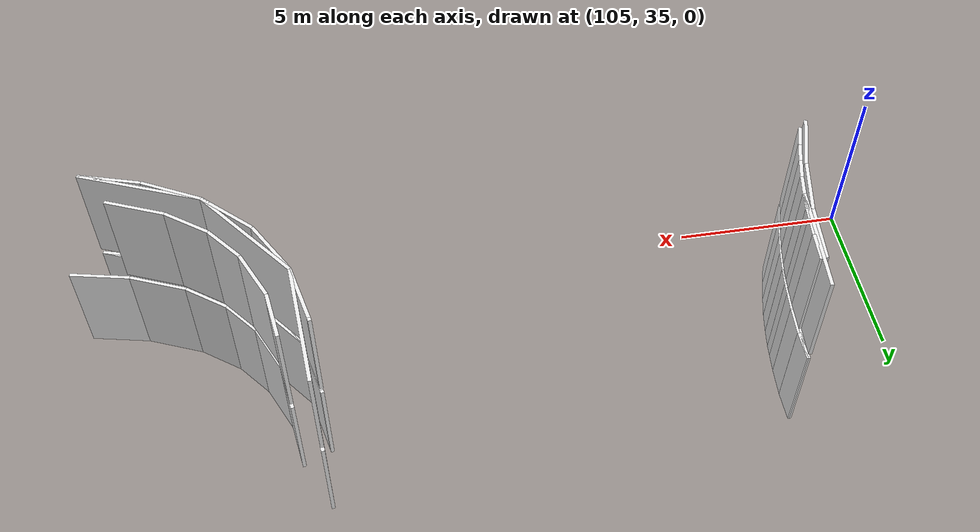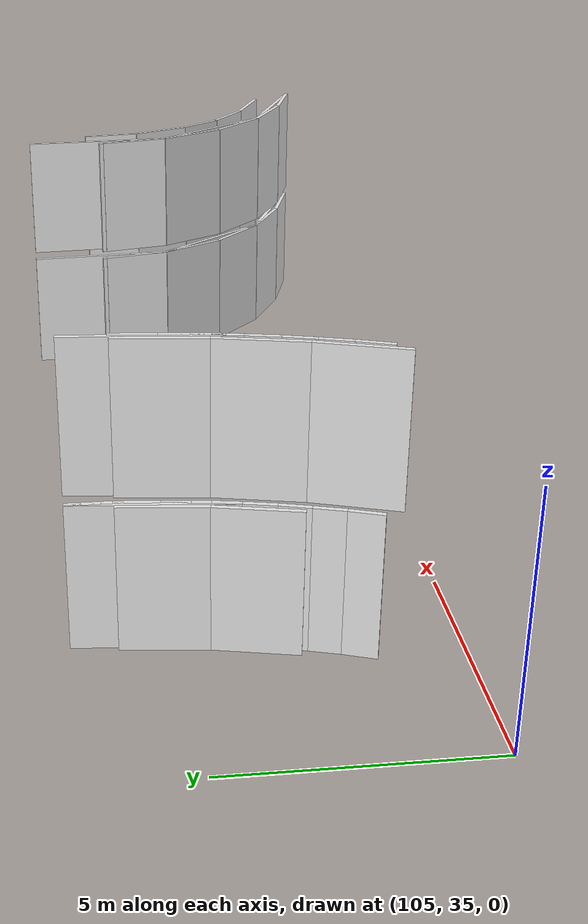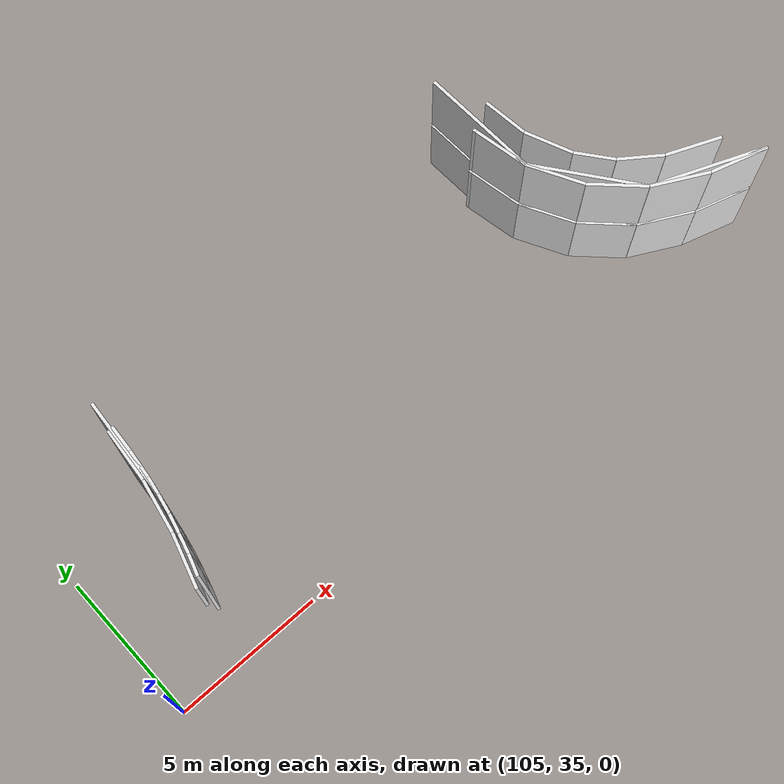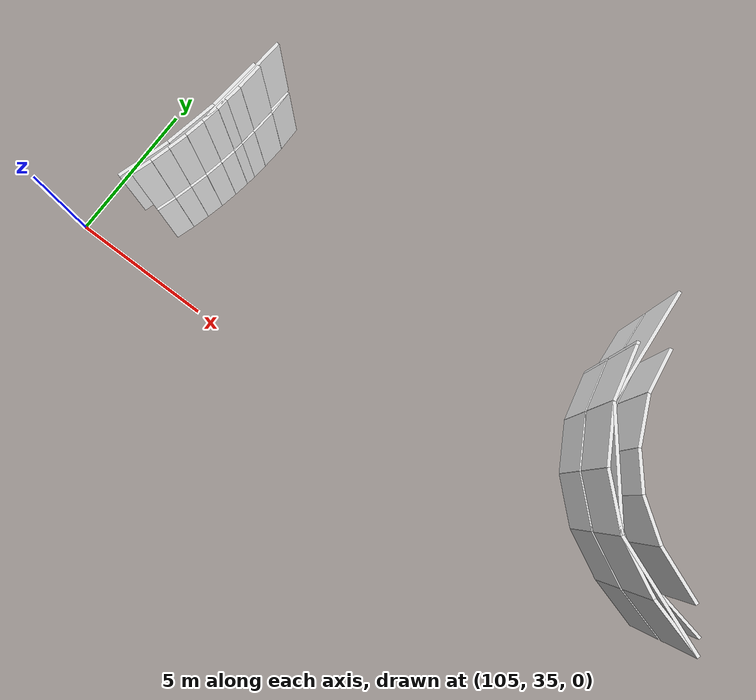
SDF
<sdf version="1.6">
 <world name="default">
  <model name="wall_122.7_40.9_0.0">
   <static>true</static>
   <pose>122.72000000000116 40.94499999983236 1.5 0 0 -1.4258349304067353</pose>
   <link name="link">
    <visual name="visual">
     <geometry><box><size>1.384521578131188 0.1 3</size></box></geometry>
     <material>
      <script><uri>file://media/materials/scripts/gazebo.material</uri><name>Gazebo/White</name></script>
     </material>
    </visual>
   </link>
  </model>
  <model name="wall_123.1_39.6_0.0">
   <static>true</static>
   <pose>123.13000000000466 39.574999999953434 1.5 0 0 -1.1458199052710913</pose>
   <link name="link">
    <visual name="visual">
     <geometry><box><size>1.5037619489216145 0.1 3</size></box></geometry>
     <material>
      <script><uri>file://media/materials/scripts/gazebo.material</uri><name>Gazebo/White</name></script>
     </material>
    </visual>
   </link>
  </model>
  <model name="wall_123.8_38.4_0.0">
   <static>true</static>
   <pose>123.8299999999872 38.41000000014901 1.5 0 0 -0.8884797719201485</pose>
   <link name="link">
    <visual name="visual">
     <geometry><box><size>1.2369316876372989 0.1 3</size></box></geometry>
     <material>
      <script><uri>file://media/materials/scripts/gazebo.material</uri><name>Gazebo/White</name></script>
     </material>
    </visual>
   </link>
  </model>
  <model name="wall_124.8_37.5_0.0">
   <static>true</static>
   <pose>124.77999999999884 37.52000000001863 1.5 0 0 -0.6319742419690464</pose>
   <link name="link">
    <visual name="visual">
     <geometry><box><size>1.388092216176113 0.1 3</size></box></geometry>
     <material>
      <script><uri>file://media/materials/scripts/gazebo.material</uri><name>Gazebo/White</name></script>
     </material>
    </visual>
   </link>
  </model>
  <model name="wall_126.1_36.8_0.0">
   <static>true</static>
   <pose>126.13000000000466 36.77499999990687 1.5 0 0 -0.40106625021121617</pose>
   <link name="link">
    <visual name="visual">
     <geometry><box><size>1.716187635361509 0.1 3</size></box></geometry>
     <material>
      <script><uri>file://media/materials/scripts/gazebo.material</uri><name>Gazebo/White</name></script>
     </material>
    </visual>
   </link>
  </model>
  <model name="wall_127.8_36.3_0.0">
   <static>true</static>
   <pose>127.76999999998952 36.25499999988824 1.5 0 0 -0.21430488386451166</pose>
   <link name="link">
    <visual name="visual">
     <geometry><box><size>1.739798838981761 0.1 3</size></box></geometry>
     <material>
      <script><uri>file://media/materials/scripts/gazebo.material</uri><name>Gazebo/White</name></script>
     </material>
    </visual>
   </link>
  </model>
  <model name="wall_108.4_40.5_0.0">
   <static>true</static>
   <pose>108.39999999999418 40.48999999999069 1.5 0 0 -1.6657480331131271</pose>
   <link name="link">
    <visual name="visual">
     <geometry><box><size>1.6876018489427735 0.1 3</size></box></geometry>
     <material>
      <script><uri>file://media/materials/scripts/gazebo.material</uri><name>Gazebo/White</name></script>
     </material>
    </visual>
   </link>
  </model>
  <model name="wall_108.2_38.8_0.0">
   <static>true</static>
   <pose>108.15499999999884 38.829999999841675 1.5 0 0 -1.7693642190444387</pose>
   <link name="link">
    <visual name="visual">
     <geometry><box><size>1.672871782426382 0.1 3</size></box></geometry>
     <material>
      <script><uri>file://media/materials/scripts/gazebo.material</uri><name>Gazebo/White</name></script>
     </material>
    </visual>
   </link>
  </model>
  <model name="wall_107.8_37.0_0.0">
   <static>true</static>
   <pose>107.84500000000116 36.96999999997206 1.5 0 0 1.2537405736165406</pose>
   <link name="link">
    <visual name="visual">
     <geometry><box><size>0.6735725648923759 0.1 3</size></box></geometry>
     <material>
      <script><uri>file://media/materials/scripts/gazebo.material</uri><name>Gazebo/White</name></script>
     </material>
    </visual>
   </link>
  </model>
  <model name="wall_108.0_37.6_0.0">
   <static>true</static>
   <pose>108.02999999999884 37.58499999996275 1.5 0 0 1.3059789968657436</pose>
   <link name="link">
    <visual name="visual">
     <geometry><box><size>0.6113100684725965 0.1 3</size></box></geometry>
     <material>
      <script><uri>file://media/materials/scripts/gazebo.material</uri><name>Gazebo/White</name></script>
     </material>
    </visual>
   </link>
  </model>
  <model name="wall_108.2_38.2_0.0">
   <static>true</static>
   <pose>108.18499999999767 38.175000000046566 1.5 0 0 1.3218336210932762</pose>
   <link name="link">
    <visual name="visual">
     <geometry><box><size>0.6087692505216008 0.1 3</size></box></geometry>
     <material>
      <script><uri>file://media/materials/scripts/gazebo.material</uri><name>Gazebo/White</name></script>
     </material>
    </visual>
   </link>
  </model>
  <model name="wall_108.3_38.8_0.0">
   <static>true</static>
   <pose>108.32000000000698 38.7750000001397 1.5 0 0 1.3765553305803602</pose>
   <link name="link">
    <visual name="visual">
     <geometry><box><size>0.6216912415659501 0.1 3</size></box></geometry>
     <material>
      <script><uri>file://media/materials/scripts/gazebo.material</uri><name>Gazebo/White</name></script>
     </material>
    </visual>
   </link>
  </model>
  <model name="wall_108.4_39.4_0.0">
   <static>true</static>
   <pose>108.42499999998836 39.35000000009313 1.5 0 0 1.4056476494501888</pose>
   <link name="link">
    <visual name="visual">
     <geometry><box><size>0.547448627758227 0.1 3</size></box></geometry>
     <material>
      <script><uri>file://media/materials/scripts/gazebo.material</uri><name>Gazebo/White</name></script>
     </material>
    </visual>
   </link>
  </model>
  <model name="wall_108.5_39.8_0.0">
   <static>true</static>
   <pose>108.48999999999069 39.795000000158325 1.5 0 0 1.4570043195761424</pose>
   <link name="link">
    <visual name="visual">
     <geometry><box><size>0.35227829917293063 0.1 3</size></box></geometry>
     <material>
      <script><uri>file://media/materials/scripts/gazebo.material</uri><name>Gazebo/White</name></script>
     </material>
    </visual>
   </link>
  </model>
  <model name="wall_108.5_40.2_0.0">
   <static>true</static>
   <pose>108.54000000000815 40.23999999999069 1.5 0 0 1.4601391055381852</pose>
   <link name="link">
    <visual name="visual">
     <geometry><box><size>0.5433231078621997 0.1 3</size></box></geometry>
     <material>
      <script><uri>file://media/materials/scripts/gazebo.material</uri><name>Gazebo/White</name></script>
     </material>
    </visual>
   </link>
  </model>
  <model name="wall_108.6_40.9_0.0">
   <static>true</static>
   <pose>108.60000000000582 40.92999999993481 1.5 0 0 1.4994888620391533</pose>
   <link name="link">
    <visual name="visual">
     <geometry><box><size>0.8421401311727711 0.1 3</size></box></geometry>
     <material>
      <script><uri>file://media/materials/scripts/gazebo.material</uri><name>Gazebo/White</name></script>
     </material>
    </visual>
   </link>
  </model>
  <model name="wall_108.6_41.8_0.0">
   <static>true</static>
   <pose>108.63000000000466 41.78500000014901 1.5 0 0 1.5707963267948966</pose>
   <link name="link">
    <visual name="visual">
     <geometry><box><size>0.8700000001117587 0.1 3</size></box></geometry>
     <material>
      <script><uri>file://media/materials/scripts/gazebo.material</uri><name>Gazebo/White</name></script>
     </material>
    </visual>
   </link>
  </model>
  <model name="wall_121.8_41.2_0.0">
   <static>true</static>
   <pose>121.80999999999767 41.21999999997206 1.5 0 0 -1.373400766945016</pose>
   <link name="link">
    <visual name="visual">
     <geometry><box><size>0.10198039036683233 0.1 3</size></box></geometry>
     <material>
      <script><uri>file://media/materials/scripts/gazebo.material</uri><name>Gazebo/White</name></script>
     </material>
    </visual>
   </link>
  </model>
  <model name="wall_122.0_40.3_0.0">
   <static>true</static>
   <pose>122.00500000000466 40.34499999997206 1.5 0 0 -1.350203072831387</pose>
   <link name="link">
    <visual name="visual">
     <geometry><box><size>1.6909760494132429 0.1 3</size></box></geometry>
     <material>
      <script><uri>file://media/materials/scripts/gazebo.material</uri><name>Gazebo/White</name></script>
     </material>
    </visual>
   </link>
  </model>
  <model name="wall_122.6_38.7_0.0">
   <static>true</static>
   <pose>122.63000000000466 38.73999999999069 1.5 0 0 -1.057190322085212</pose>
   <link name="link">
    <visual name="visual">
     <geometry><box><size>1.7910890542300064 0.1 3</size></box></geometry>
     <material>
      <script><uri>file://media/materials/scripts/gazebo.material</uri><name>Gazebo/White</name></script>
     </material>
    </visual>
   </link>
  </model>
  <model name="wall_123.7_37.3_0.0">
   <static>true</static>
   <pose>123.72000000000116 37.34000000008382 1.5 0 0 -0.7617805082994406</pose>
   <link name="link">
    <visual name="visual">
     <geometry><box><size>1.7965522534480356 0.1 3</size></box></geometry>
     <material>
      <script><uri>file://media/materials/scripts/gazebo.material</uri><name>Gazebo/White</name></script>
     </material>
    </visual>
   </link>
  </model>
  <model name="wall_125.2_36.3_0.0">
   <static>true</static>
   <pose>125.16500000000815 36.300000000046566 1.5 0 0 -0.48603192948913904</pose>
   <link name="link">
    <visual name="visual">
     <geometry><box><size>1.798249148648044 0.1 3</size></box></geometry>
     <material>
      <script><uri>file://media/materials/scripts/gazebo.material</uri><name>Gazebo/White</name></script>
     </material>
    </visual>
   </link>
  </model>
  <model name="wall_126.8_35.6_0.0">
   <static>true</static>
   <pose>126.82000000000698 35.61999999987893 1.5 0 0 -0.2935889874231719</pose>
   <link name="link">
    <visual name="visual">
     <geometry><box><size>1.7968861955959423 0.1 3</size></box></geometry>
     <material>
      <script><uri>file://media/materials/scripts/gazebo.material</uri><name>Gazebo/White</name></script>
     </material>
    </visual>
   </link>
  </model>
  <model name="wall_126.0_36.0_0.0">
   <static>true</static>
   <pose>126.02499999999418 36.04000000003725 1.5 0 0 2.7517456035789243</pose>
   <link name="link">
    <visual name="visual">
     <geometry><box><size>3.578505274677758 0.1 3</size></box></geometry>
     <material>
      <script><uri>file://media/materials/scripts/gazebo.material</uri><name>Gazebo/White</name></script>
     </material>
    </visual>
   </link>
  </model>
  <model name="wall_123.3_38.1_0.0">
   <static>true</static>
   <pose>123.27999999999884 38.12000000011176 1.5 0 0 2.232333811009223</pose>
   <link name="link">
    <visual name="visual">
     <geometry><box><size>3.548577179508213 0.1 3</size></box></geometry>
     <material>
      <script><uri>file://media/materials/scripts/gazebo.material</uri><name>Gazebo/White</name></script>
     </material>
    </visual>
   </link>
  </model>
  <model name="wall_122.1_41.3_0.0">
   <static>true</static>
   <pose>122.05999999999767 41.30499999993481 1.5 0 0 1.6434971027864747</pose>
   <link name="link">
    <visual name="visual">
     <geometry><box><size>3.5794552656525696 0.1 3</size></box></geometry>
     <material>
      <script><uri>file://media/materials/scripts/gazebo.material</uri><name>Gazebo/White</name></script>
     </material>
    </visual>
   </link>
  </model>
  <model name="wall_108.5_40.7_0.0">
   <static>true</static>
   <pose>108.50500000000466 40.6500000001397 1.5 0 0 -1.6502465656866598</pose>
   <link name="link">
    <visual name="visual">
     <geometry><box><size>3.149936507426589 0.1 3</size></box></geometry>
     <material>
      <script><uri>file://media/materials/scripts/gazebo.material</uri><name>Gazebo/White</name></script>
     </material>
    </visual>
   </link>
  </model>
  <model name="wall_122.7_40.9_3.2">
   <static>true</static>
   <pose>122.72000000000116 40.94499999983236 4.7 0 0 -1.4258349304067353</pose>
   <link name="link">
    <visual name="visual">
     <geometry><box><size>1.384521578131188 0.1 3</size></box></geometry>
     <material>
      <script><uri>file://media/materials/scripts/gazebo.material</uri><name>Gazebo/White</name></script>
     </material>
    </visual>
   </link>
  </model>
  <model name="wall_123.1_39.6_3.2">
   <static>true</static>
   <pose>123.13000000000466 39.574999999953434 4.7 0 0 -1.1458199052710913</pose>
   <link name="link">
    <visual name="visual">
     <geometry><box><size>1.5037619489216145 0.1 3</size></box></geometry>
     <material>
      <script><uri>file://media/materials/scripts/gazebo.material</uri><name>Gazebo/White</name></script>
     </material>
    </visual>
   </link>
  </model>
  <model name="wall_123.8_38.4_3.2">
   <static>true</static>
   <pose>123.8299999999872 38.41000000014901 4.7 0 0 -0.8884797719201485</pose>
   <link name="link">
    <visual name="visual">
     <geometry><box><size>1.2369316876372989 0.1 3</size></box></geometry>
     <material>
      <script><uri>file://media/materials/scripts/gazebo.material</uri><name>Gazebo/White</name></script>
     </material>
    </visual>
   </link>
  </model>
  <model name="wall_124.8_37.5_3.2">
   <static>true</static>
   <pose>124.77999999999884 37.52000000001863 4.7 0 0 -0.6319742419690464</pose>
   <link name="link">
    <visual name="visual">
     <geometry><box><size>1.388092216176113 0.1 3</size></box></geometry>
     <material>
      <script><uri>file://media/materials/scripts/gazebo.material</uri><name>Gazebo/White</name></script>
     </material>
    </visual>
   </link>
  </model>
  <model name="wall_126.1_36.8_3.2">
   <static>true</static>
   <pose>126.13000000000466 36.77499999990687 4.7 0 0 -0.40106625021121617</pose>
   <link name="link">
    <visual name="visual">
     <geometry><box><size>1.716187635361509 0.1 3</size></box></geometry>
     <material>
      <script><uri>file://media/materials/scripts/gazebo.material</uri><name>Gazebo/White</name></script>
     </material>
    </visual>
   </link>
  </model>
  <model name="wall_108.4_40.5_3.2">
   <static>true</static>
   <pose>108.39999999999418 40.48999999999069 4.7 0 0 -1.6657480331131271</pose>
   <link name="link">
    <visual name="visual">
     <geometry><box><size>1.6876018489427735 0.1 3</size></box></geometry>
     <material>
      <script><uri>file://media/materials/scripts/gazebo.material</uri><name>Gazebo/White</name></script>
     </material>
    </visual>
   </link>
  </model>
  <model name="wall_108.2_38.8_3.2">
   <static>true</static>
   <pose>108.15499999999884 38.829999999841675 4.7 0 0 -1.7693642190444387</pose>
   <link name="link">
    <visual name="visual">
     <geometry><box><size>1.672871782426382 0.1 3</size></box></geometry>
     <material>
      <script><uri>file://media/materials/scripts/gazebo.material</uri><name>Gazebo/White</name></script>
     </material>
    </visual>
   </link>
  </model>
  <model name="wall_107.7_37.2_3.2">
   <static>true</static>
   <pose>107.74499999999534 37.204999999841675 4.7 0 0 -1.8662371639558804</pose>
   <link name="link">
    <visual name="visual">
     <geometry><box><size>1.6829141390965354 0.1 3</size></box></geometry>
     <material>
      <script><uri>file://media/materials/scripts/gazebo.material</uri><name>Gazebo/White</name></script>
     </material>
    </visual>
   </link>
  </model>
  <model name="wall_107.8_37.0_3.2">
   <static>true</static>
   <pose>107.84500000000116 36.96999999997206 4.7 0 0 1.2537405736165406</pose>
   <link name="link">
    <visual name="visual">
     <geometry><box><size>0.6735725648923759 0.1 3</size></box></geometry>
     <material>
      <script><uri>file://media/materials/scripts/gazebo.material</uri><name>Gazebo/White</name></script>
     </material>
    </visual>
   </link>
  </model>
  <model name="wall_108.0_37.6_3.2">
   <static>true</static>
   <pose>108.02999999999884 37.58499999996275 4.7 0 0 1.3059789968657436</pose>
   <link name="link">
    <visual name="visual">
     <geometry><box><size>0.6113100684725965 0.1 3</size></box></geometry>
     <material>
      <script><uri>file://media/materials/scripts/gazebo.material</uri><name>Gazebo/White</name></script>
     </material>
    </visual>
   </link>
  </model>
  <model name="wall_108.2_38.2_3.2">
   <static>true</static>
   <pose>108.18499999999767 38.175000000046566 4.7 0 0 1.3218336210932762</pose>
   <link name="link">
    <visual name="visual">
     <geometry><box><size>0.6087692505216008 0.1 3</size></box></geometry>
     <material>
      <script><uri>file://media/materials/scripts/gazebo.material</uri><name>Gazebo/White</name></script>
     </material>
    </visual>
   </link>
  </model>
  <model name="wall_108.3_38.8_3.2">
   <static>true</static>
   <pose>108.32000000000698 38.7750000001397 4.7 0 0 1.3765553305803602</pose>
   <link name="link">
    <visual name="visual">
     <geometry><box><size>0.6216912415659501 0.1 3</size></box></geometry>
     <material>
      <script><uri>file://media/materials/scripts/gazebo.material</uri><name>Gazebo/White</name></script>
     </material>
    </visual>
   </link>
  </model>
  <model name="wall_108.4_39.4_3.2">
   <static>true</static>
   <pose>108.42499999998836 39.35000000009313 4.7 0 0 1.4056476494501888</pose>
   <link name="link">
    <visual name="visual">
     <geometry><box><size>0.547448627758227 0.1 3</size></box></geometry>
     <material>
      <script><uri>file://media/materials/scripts/gazebo.material</uri><name>Gazebo/White</name></script>
     </material>
    </visual>
   </link>
  </model>
  <model name="wall_108.5_39.8_3.2">
   <static>true</static>
   <pose>108.48999999999069 39.795000000158325 4.7 0 0 1.4570043195761424</pose>
   <link name="link">
    <visual name="visual">
     <geometry><box><size>0.35227829917293063 0.1 3</size></box></geometry>
     <material>
      <script><uri>file://media/materials/scripts/gazebo.material</uri><name>Gazebo/White</name></script>
     </material>
    </visual>
   </link>
  </model>
  <model name="wall_108.5_40.2_3.2">
   <static>true</static>
   <pose>108.54000000000815 40.23999999999069 4.7 0 0 1.4601391055381852</pose>
   <link name="link">
    <visual name="visual">
     <geometry><box><size>0.5433231078621997 0.1 3</size></box></geometry>
     <material>
      <script><uri>file://media/materials/scripts/gazebo.material</uri><name>Gazebo/White</name></script>
     </material>
    </visual>
   </link>
  </model>
  <model name="wall_108.6_40.9_3.2">
   <static>true</static>
   <pose>108.60000000000582 40.92999999993481 4.7 0 0 1.4994888620391533</pose>
   <link name="link">
    <visual name="visual">
     <geometry><box><size>0.8421401311727711 0.1 3</size></box></geometry>
     <material>
      <script><uri>file://media/materials/scripts/gazebo.material</uri><name>Gazebo/White</name></script>
     </material>
    </visual>
   </link>
  </model>
  <model name="wall_121.8_41.2_3.2">
   <static>true</static>
   <pose>121.80999999999767 41.21999999997206 4.7 0 0 -1.373400766945016</pose>
   <link name="link">
    <visual name="visual">
     <geometry><box><size>0.10198039036683233 0.1 3</size></box></geometry>
     <material>
      <script><uri>file://media/materials/scripts/gazebo.material</uri><name>Gazebo/White</name></script>
     </material>
    </visual>
   </link>
  </model>
  <model name="wall_122.0_40.3_3.2">
   <static>true</static>
   <pose>122.00500000000466 40.34499999997206 4.7 0 0 -1.350203072831387</pose>
   <link name="link">
    <visual name="visual">
     <geometry><box><size>1.6909760494132429 0.1 3</size></box></geometry>
     <material>
      <script><uri>file://media/materials/scripts/gazebo.material</uri><name>Gazebo/White</name></script>
     </material>
    </visual>
   </link>
  </model>
  <model name="wall_122.6_38.7_3.2">
   <static>true</static>
   <pose>122.63000000000466 38.73999999999069 4.7 0 0 -1.057190322085212</pose>
   <link name="link">
    <visual name="visual">
     <geometry><box><size>1.7910890542300064 0.1 3</size></box></geometry>
     <material>
      <script><uri>file://media/materials/scripts/gazebo.material</uri><name>Gazebo/White</name></script>
     </material>
    </visual>
   </link>
  </model>
  <model name="wall_123.7_37.3_3.2">
   <static>true</static>
   <pose>123.72000000000116 37.34000000008382 4.7 0 0 -0.7617805082994406</pose>
   <link name="link">
    <visual name="visual">
     <geometry><box><size>1.7965522534480356 0.1 3</size></box></geometry>
     <material>
      <script><uri>file://media/materials/scripts/gazebo.material</uri><name>Gazebo/White</name></script>
     </material>
    </visual>
   </link>
  </model>
  <model name="wall_125.2_36.3_3.2">
   <static>true</static>
   <pose>125.16500000000815 36.300000000046566 4.7 0 0 -0.48603192948913904</pose>
   <link name="link">
    <visual name="visual">
     <geometry><box><size>1.798249148648044 0.1 3</size></box></geometry>
     <material>
      <script><uri>file://media/materials/scripts/gazebo.material</uri><name>Gazebo/White</name></script>
     </material>
    </visual>
   </link>
  </model>
  <model name="wall_126.8_35.6_3.2">
   <static>true</static>
   <pose>126.82000000000698 35.61999999987893 4.7 0 0 -0.2935889874231719</pose>
   <link name="link">
    <visual name="visual">
     <geometry><box><size>1.7968861955959423 0.1 3</size></box></geometry>
     <material>
      <script><uri>file://media/materials/scripts/gazebo.material</uri><name>Gazebo/White</name></script>
     </material>
    </visual>
   </link>
  </model>
  <model name="wall_126.0_36.0_3.2">
   <static>true</static>
   <pose>126.02499999999418 36.04000000003725 4.7 0 0 2.7517456035789243</pose>
   <link name="link">
    <visual name="visual">
     <geometry><box><size>3.578505274677758 0.1 3</size></box></geometry>
     <material>
      <script><uri>file://media/materials/scripts/gazebo.material</uri><name>Gazebo/White</name></script>
     </material>
    </visual>
   </link>
  </model>
  <model name="wall_123.3_38.1_3.2">
   <static>true</static>
   <pose>123.27999999999884 38.12000000011176 4.7 0 0 2.232333811009223</pose>
   <link name="link">
    <visual name="visual">
     <geometry><box><size>3.548577179508213 0.1 3</size></box></geometry>
     <material>
      <script><uri>file://media/materials/scripts/gazebo.material</uri><name>Gazebo/White</name></script>
     </material>
    </visual>
   </link>
  </model>
  <model name="wall_122.1_41.3_3.2">
   <static>true</static>
   <pose>122.05999999999767 41.30499999993481 4.7 0 0 1.6434971027864747</pose>
   <link name="link">
    <visual name="visual">
     <geometry><box><size>3.5794552656525696 0.1 3</size></box></geometry>
     <material>
      <script><uri>file://media/materials/scripts/gazebo.material</uri><name>Gazebo/White</name></script>
     </material>
    </visual>
   </link>
  </model>
  <model name="wall_108.5_40.7_3.2">
   <static>true</static>
   <pose>108.50500000000466 40.6500000001397 4.7 0 0 -1.6502465656866598</pose>
   <link name="link">
    <visual name="visual">
     <geometry><box><size>3.149936507426589 0.1 3</size></box></geometry>
     <material>
      <script><uri>file://media/materials/scripts/gazebo.material</uri><name>Gazebo/White</name></script>
     </material>
    </visual>
   </link>
  </model>
 </world>
</sdf>
